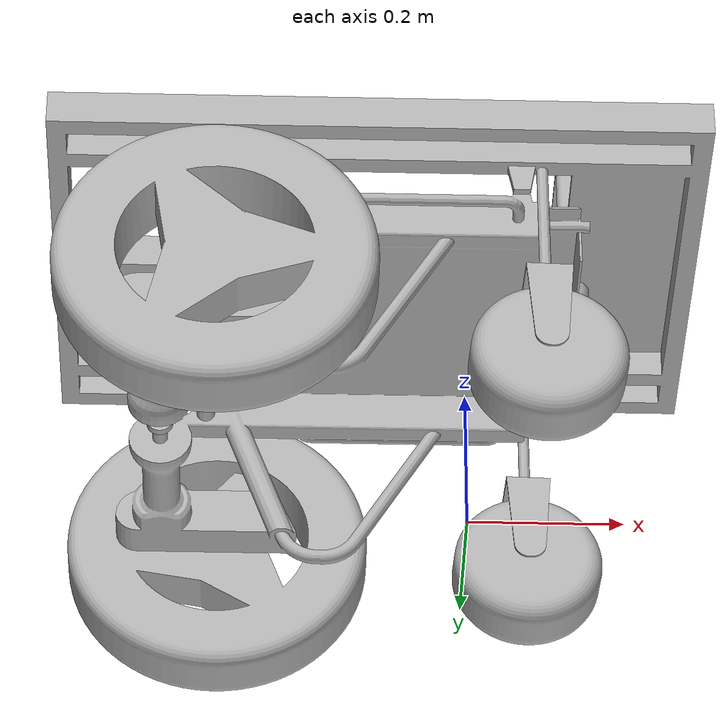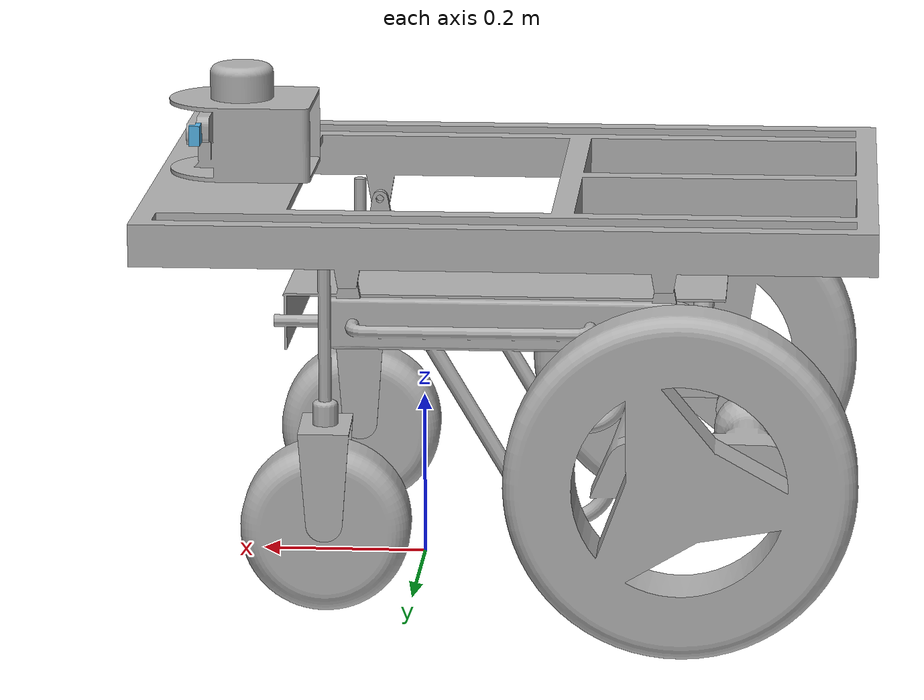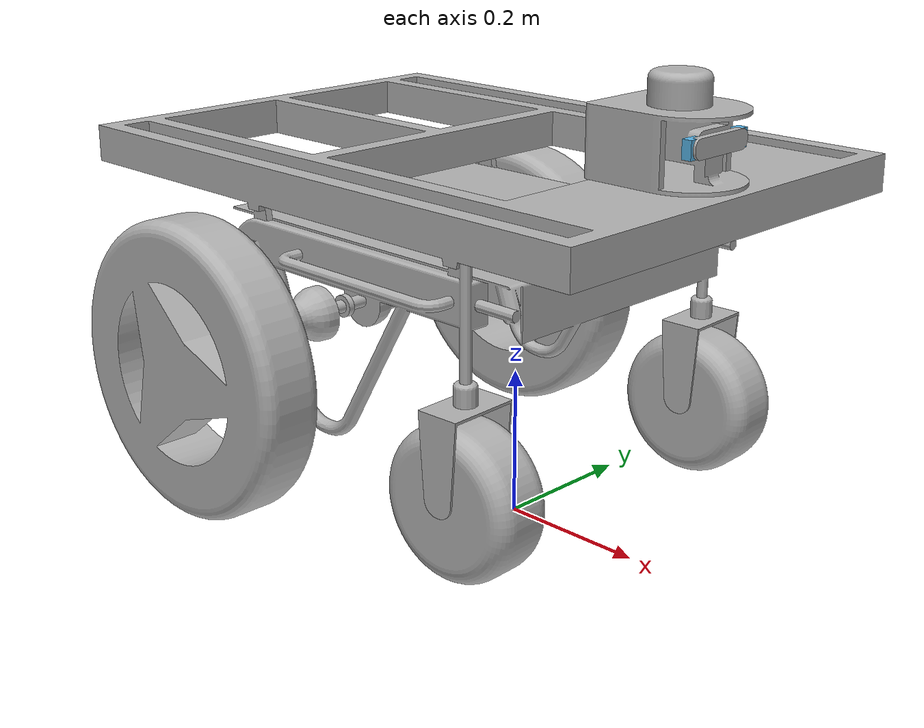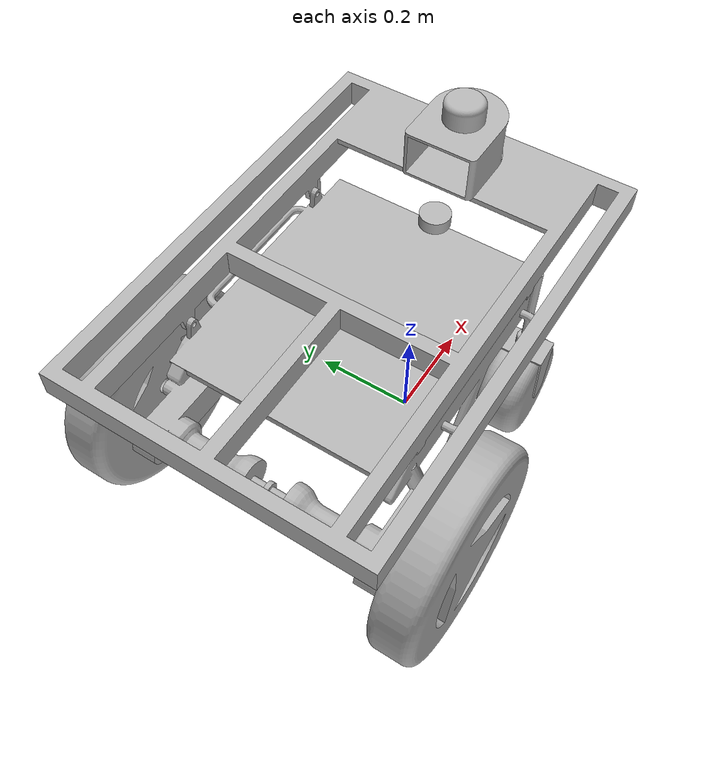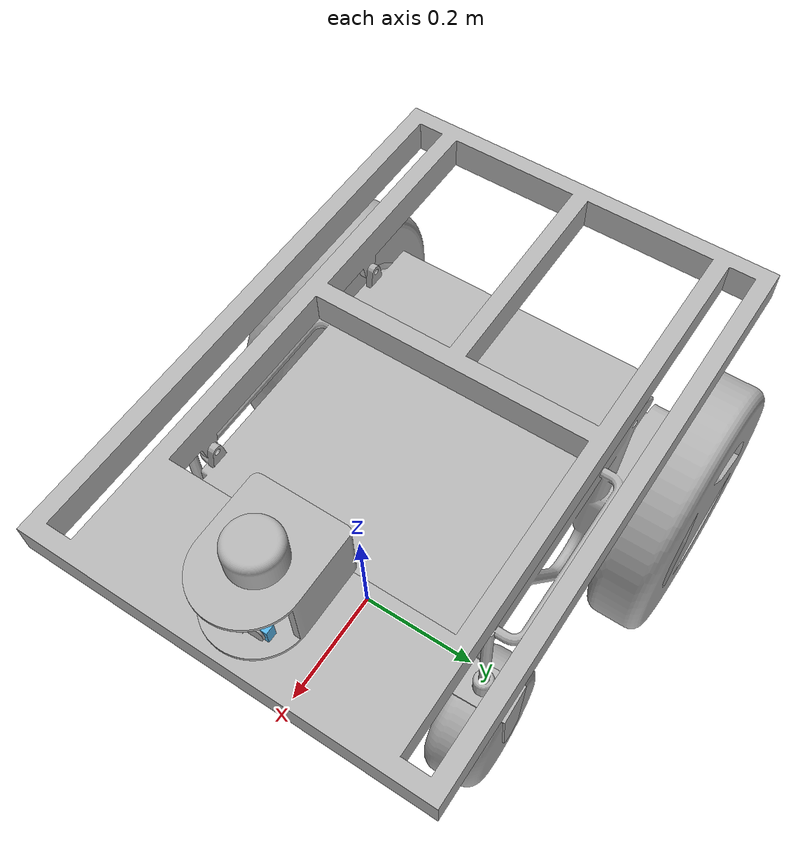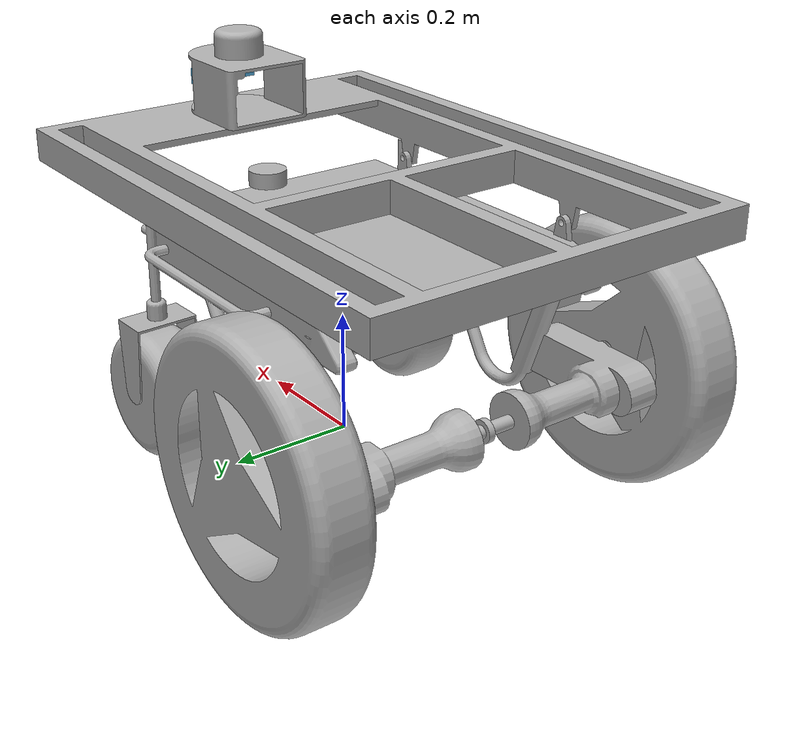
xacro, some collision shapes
<?xml version="1.0" ?>
<robot name="mobile_mover" xmlns:xacro="http://www.ros.org/wiki/xacro">

<xacro:include filename="$(find steer_wheel_bot_description)/urdf/materials2.xacro" />
<xacro:include filename="$(find steer_wheel_bot_description)/urdf/mobile_mover.trans" />
<xacro:include filename="$(find steer_wheel_bot_description)/urdf/mobile_mover.gazebo" />
<link name="base_link">
  <inertial>
    <origin rpy="0 0 0" xyz="-0.23317561352724503 0.04188257119561364 0.2703989236073173"/>
    <mass value="44.51856364368825"/>
    <inertia ixx="2.079258" ixy="-0.0" ixz="-0.435412" iyy="1.555503" iyz="-0.0" izz="2.957514"/>
  </inertial>
  <visual>
    <origin rpy="0 0 0" xyz="0 0 0"/>
    <geometry>
      <mesh filename="package://steer_wheel_bot_description/meshes/mobile_mover/base_link.stl" scale="0.001 0.001 0.001"/>
    </geometry>
    <material name="silver"/>
  </visual>
  <collision>
    <origin rpy="0 0 0" xyz="0 0 0"/>
    <geometry>
      <mesh filename="package://steer_wheel_bot_description/meshes/mobile_mover/base_link.stl" scale="0.001 0.001 0.001"/>
    </geometry>
  </collision>
</link>

<link name="front_right_steer_1">
  <inertial>
    <origin rpy="0 0 0" xyz="-6.0441180627368585e-06 -4.299779410021909e-07 -0.047823587226302866"/>
    <mass value="0.5241167973513366"/>
    <inertia ixx="0.001969" ixy="-0.0" ixz="-0.0" iyy="0.001214" iyz="0.0" izz="0.000984"/>
  </inertial>
  <visual>
    <origin rpy="0 0 0" xyz="-0.095315 0.189117 -0.233564"/>
    <geometry>
      <mesh filename="package://steer_wheel_bot_description/meshes/mobile_mover/front_right_steer_1.stl" scale="0.001 0.001 0.001"/>
    </geometry>
    <material name="silver"/>
  </visual>
  <collision>
    <origin rpy="0 0 0" xyz="-0.095315 0.189117 -0.233564"/>
    <geometry>
      <mesh filename="package://steer_wheel_bot_description/meshes/mobile_mover/front_right_steer_1.stl" scale="0.001 0.001 0.001"/>
    </geometry>
  </collision>
</link>

<link name="front_left_steer_1">
  <inertial>
    <origin rpy="0 0 0" xyz="-6.044478136416065e-06 -4.298018361215128e-07 -0.04782358688912092"/>
    <mass value="0.5241167977909424"/>
    <inertia ixx="0.001969" ixy="-0.0" ixz="-0.0" iyy="0.001214" iyz="0.0" izz="0.000984"/>
  </inertial>
  <visual>
    <origin rpy="0 0 0" xyz="-0.095315 -0.272883 -0.233564"/>
    <geometry>
      <mesh filename="package://steer_wheel_bot_description/meshes/mobile_mover/front_left_steer_1.stl" scale="0.001 0.001 0.001"/>
    </geometry>
    <material name="silver"/>
  </visual>
  <collision>
    <origin rpy="0 0 0" xyz="-0.095315 -0.272883 -0.233564"/>
    <geometry>
      <mesh filename="package://steer_wheel_bot_description/meshes/mobile_mover/front_left_steer_1.stl" scale="0.001 0.001 0.001"/>
    </geometry>
  </collision>
</link>

<link name="frame_1">
  <inertial>
    <origin rpy="0 0 0" xyz="-0.17524070367050704 -0.22039804841856286 0.046187697173592"/>
    <mass value="56.88074843558096"/>
    <inertia ixx="2.699692" ixy="0.0" ixz="-0.032419" iyy="4.683623" iyz="0.0" izz="7.35659"/>
  </inertial>
  <visual>
    <origin rpy="0 0 0" xyz="-0.06888 -0.261883 -0.416956"/>
    <geometry>
      <mesh filename="package://steer_wheel_bot_description/meshes/mobile_mover/frame_1.stl" scale="0.001 0.001 0.001"/>
    </geometry>
    <material name="silver"/>
  </visual>
  <collision>
    <origin rpy="0 0 0" xyz="-0.06888 -0.261883 -0.416956"/>
    <geometry>
      <mesh filename="package://steer_wheel_bot_description/meshes/mobile_mover/frame_1.stl" scale="0.001 0.001 0.001"/>
    </geometry>
  </collision>
</link>

<link name="holder_1">
  <inertial>
    <origin rpy="0 0 0" xyz="-0.010271011177415967 4.5429540449171135e-05 0.04467777362627379"/>
    <mass value="3.539553306950206"/>
    <inertia ixx="0.012719" ixy="-9e-06" ixz="5.8e-05" iyy="0.011103" iyz="0.0" izz="0.015721"/>
  </inertial>
  <visual>
    <origin rpy="0 0 0" xyz="-0.215468 -0.041485 -0.486652"/>
    <geometry>
      <mesh filename="package://steer_wheel_bot_description/meshes/mobile_mover/holder_1.stl" scale="0.001 0.001 0.001"/>
    </geometry>
    <material name="silver"/>
  </visual>
  <collision>
    <origin rpy="0 0 0" xyz="-0.215468 -0.041485 -0.486652"/>
    <geometry>
      <mesh filename="package://steer_wheel_bot_description/meshes/mobile_mover/holder_1.stl" scale="0.001 0.001 0.001"/>
    </geometry>
  </collision>
</link>

<link name="rplidar_1">
  <inertial>
    <origin rpy="0 0 0" xyz="2.4956952590637904e-07 -4.622064599113518e-08 0.020015469663036356"/>
    <mass value="1.422201622524844"/>
    <inertia ixx="0.000694" ixy="-0.0" ixz="0.0" iyy="0.000694" iyz="-0.0" izz="0.001005"/>
  </inertial>
  <visual>
    <origin rpy="0 0 0" xyz="-0.215468 -0.041485 -0.576652"/>
    <geometry>
      <mesh filename="package://steer_wheel_bot_description/meshes/mobile_mover/rplidar_1.stl" scale="0.001 0.001 0.001"/>
    </geometry>
    <material name="silver"/>
  </visual>
  <collision>
    <origin rpy="0 0 0" xyz="-0.215468 -0.041485 -0.576652"/>
    <geometry>
      <mesh filename="package://steer_wheel_bot_description/meshes/mobile_mover/rplidar_1.stl" scale="0.001 0.001 0.001"/>
    </geometry>
  </collision>
</link>

<link name="t265_1">
  <inertial>
    <origin rpy="0 0 0" xyz="0.004999890006068153 -3.6964643630038596e-07 1.6632066934807455e-07"/>
    <mass value="0.18951150233067984"/>
    <inertia ixx="0.000158" ixy="0.0" ixz="-0.0" iyy="1.1e-05" iyz="0.0" izz="0.00015"/>
  </inertial>
  <visual>
    <origin rpy="0 0 0" xyz="-0.267613 -0.04192 -0.539152"/>
    <geometry>
      <mesh filename="package://steer_wheel_bot_description/meshes/mobile_mover/t265_1.stl" scale="0.001 0.001 0.001"/>
    </geometry>
    <material name="silver"/>
  </visual>
  <collision>
    <origin rpy="0 0 0" xyz="-0.267613 -0.04192 -0.539152"/>
    <geometry>
      <mesh filename="package://steer_wheel_bot_description/meshes/mobile_mover/t265_1.stl" scale="0.001 0.001 0.001"/>
    </geometry>
  </collision>
</link>

<link name="front_steer_1">
  <inertial>
    <origin rpy="0 0 0" xyz="-3.6325265601044876e-08 -4.298912406122679e-07 0.012499701139937702"/>
    <mass value="0"/>
    <inertia ixx="0.000154" ixy="-0.0" ixz="0.0" iyy="0.000154" iyz="0.0" izz="0.00025"/>
  </inertial>
  <visual>
    <origin rpy="0 0 0" xyz="-0.142076 -0.041883 -0.385564"/>
    <geometry>
      <mesh filename="package://steer_wheel_bot_description/meshes/mobile_mover/front_steer_1.stl" scale="0.001 0.001 0.001"/>
    </geometry>
    <material name="silver"/>
  </visual>
  <collision>
    <origin rpy="0 0 0" xyz="-0.142076 -0.041883 -0.385564"/>
    <geometry>
      <mesh filename="package://steer_wheel_bot_description/meshes/mobile_mover/front_steer_1.stl" scale="0.001 0.001 0.001"/>
    </geometry>
  </collision>
</link>
<link name="front_right_wheel_1">
  <inertial>
     <origin rpy="0 0 0" xyz="-0.0017259358567945776 0.04496637308849069 8.831674661036182e-08"/>
    <mass value="3.890647375550827"/>
    <inertia ixx="0.062923" ixy="-0.001414" ixz="-0.0" iyy="0.099705" iyz="0.0" izz="0.062869"/>
  </inertial>
  <visual>
    <origin rpy="0 0 0" xyz="-0.096984 0.234086 -0.112327"/>
    <geometry>
      <mesh filename="package://steer_wheel_bot_description/meshes/mobile_mover/front_right_wheel_1.stl" scale="0.001 0.001 0.001"/>
    </geometry>
    <material name="silver"/>
  </visual>
  <collision>
     <origin rpy="0 0 0" xyz="-0.096984 0.234086 -0.112327"/>
    <geometry>
      <mesh filename="package://steer_wheel_bot_description/meshes/mobile_mover/front_right_wheel_1.stl" scale="0.001 0.001 0.001"/>
    </geometry>
  </collision>
</link>
<link name="front_left_wheel_1">
  <inertial>
    <origin rpy="0 0 0" xyz="-0.00172593584430214 0.04496637326778047 8.831671204079239e-08"/>
    <mass value="3.890647375550806"/>
    <inertia ixx="0.062923" ixy="-0.001414" ixz="0.0" iyy="0.099705" iyz="0.0" izz="0.062869"/>
  </inertial>
  <visual>
    <origin rpy="0 0 0" xyz="-0.096984 -0.227914 -0.112327"/>
    <geometry>
      <mesh filename="package://steer_wheel_bot_description/meshes/mobile_mover/front_left_wheel_1.stl" scale="0.001 0.001 0.001"/>
    </geometry>
    <material name="silver"/>
  </visual>
  <collision>
  <origin rpy="0 0 0" xyz="-0.096984 -0.227914 -0.112327"/>
    <geometry>
      <mesh filename="package://steer_wheel_bot_description/meshes/mobile_mover/front_left_wheel_1.stl" scale="0.001 0.001 0.001"/>
    </geometry>
  </collision>
</link>

<link name="Component221_1">
  <inertial>
    <origin rpy="0 0 0" xyz="1.3089888273309924e-07 0.03999957010876765 -6.694811874319306e-08"/>
    <mass value="0.1972920186454391"/>
    <inertia ixx="0.00011" ixy="-0.0" ixz="0.0" iyy="1e-05" iyz="-0.0" izz="0.00011"/>
  </inertial>
  <visual>
    <origin rpy="0 0 0" xyz="0.398806 -0.001883 -0.186215"/>
    <geometry>
      <mesh filename="package://steer_wheel_bot_description/meshes/mobile_mover/Component221_1.stl" scale="0.001 0.001 0.001"/>
    </geometry>
    <material name="silver"/>
  </visual>
  <collision>
    <origin rpy="0 0 0" xyz="0.398806 -0.001883 -0.186215"/>
    <geometry>
      <mesh filename="package://steer_wheel_bot_description/meshes/mobile_mover/Component221_1.stl" scale="0.001 0.001 0.001"/>
    </geometry>
  </collision>
</link>

<link name="rear_wheel_1">
  <inertial>
    <origin rpy="0 0 0" xyz="1.3089887962447477e-07 0.0049995701087678646 -6.694811729990313e-08"/>
    <mass value="0"/>
    <inertia ixx="5e-06" ixy="0.0" ixz="0.0" iyy="1e-05" iyz="0.0" izz="5e-06"/>
  </inertial>
  <visual>
    <origin rpy="0 0 0" xyz="0.398806 -0.041883 -0.186215"/>
    <geometry>
      <mesh filename="package://steer_wheel_bot_description/meshes/mobile_mover/rear_wheel_1.stl" scale="0.001 0.001 0.001"/>
    </geometry>
    <material name="silver"/>
  </visual>
  <collision>
    <origin rpy="0 0 0" xyz="0.398806 -0.041883 -0.186215"/>
    <geometry>
      <mesh filename="package://steer_wheel_bot_description/meshes/mobile_mover/rear_wheel_1.stl" scale="0.001 0.001 0.001"/>
    </geometry>
  </collision>
</link>

<link name="rear_left_wheel_1">
  <inertial>
    <origin rpy="0 0 0" xyz="-3.5702725187380935e-07 0.022393609573460982 6.257626461447785e-08"/>
    <mass value="5.08809133279846"/>
    <inertia ixx="0.888586" ixy="0.0" ixz="-1e-06" iyy="1.690944" iyz="0.0" izz="0.888588"/>
  </inertial>
  <visual>
    <origin rpy="0 0 0" xyz="0.324712 -0.336883 -0.192691"/>
    <geometry>
      <mesh filename="package://steer_wheel_bot_description/meshes/mobile_mover/rear_left_wheel_1.stl" scale="0.001 0.001 0.001"/>
    </geometry>
    <material name="silver"/>
  </visual>
  <collision>
    <origin rpy="0 0 0" xyz="0.324712 -0.336883 -0.192691"/>
    <geometry>
      <mesh filename="package://steer_wheel_bot_description/meshes/mobile_mover/rear_left_wheel_1.stl" scale="0.001 0.001 0.001"/>
    </geometry>
  </collision>
</link>

<link name="rear_right_wheel_1">
  <inertial>
    <origin rpy="0 0 0" xyz="1.5516554191519205e-07 -0.02239446935592715 -3.4935295906146635e-07"/>
    <mass value="5.08809133279846"/>
    <inertia ixx="0.888589" ixy="-0.0" ixz="-0.0" iyy="1.690944" iyz="-0.0" izz="0.888586"/>
  </inertial>
  <visual>
    <origin rpy="0 0 0" xyz="0.324712 0.253117 -0.192691"/>
    <geometry>
      <mesh filename="package://steer_wheel_bot_description/meshes/mobile_mover/rear_right_wheel_1.stl" scale="0.001 0.001 0.001"/>
    </geometry>
    <material name="silver"/>
  </visual>
  <collision>
    <origin rpy="0 0 0" xyz="0.324712 0.253117 -0.192691"/>
    <geometry>
      <mesh filename="package://steer_wheel_bot_description/meshes/mobile_mover/rear_right_wheel_1.stl" scale="0.001 0.001 0.001"/>
    </geometry>
  </collision>
</link>

<joint name="front_right_steer_joint" type="revolute">
  <origin rpy="0 0 0" xyz="0.095315 -0.189117 0.233564"/>
  <parent link="base_link"/>
  <child link="front_right_steer_1"/>
  <axis xyz="0.0 0.0 1.0"/>
  <limit effort="100" lower="-0.923599" upper="0.923599" velocity="100"/>
</joint>

<joint name="front_left_steer_joint" type="revolute">
  <origin rpy="0 0 0" xyz="0.095315 0.272883 0.233564"/>
  <parent link="base_link"/>
  <child link="front_left_steer_1"/>
  <axis xyz="0.0 0.0 1.0"/>
  <limit effort="100" lower="-0.923599" upper="0.923599" velocity="100"/>
</joint>

<joint name="base_frame" type="fixed">
  <origin rpy="0 0 0" xyz="0.06888 0.261883 0.416956"/>
  <parent link="base_link"/>
  <child link="frame_1"/>
</joint>

<joint name="frame_holder" type="fixed">
  <origin rpy="0 0 0" xyz="0.146588 -0.220398 0.069696"/>
  <parent link="frame_1"/>
  <child link="holder_1"/>
</joint>

<joint name="holder_lidar" type="fixed">
  <origin rpy="0 0 0" xyz="0.0 0.0 0.09"/>
  <parent link="holder_1"/>
  <child link="rplidar_1"/>
</joint>

<joint name="holder_camera" type="fixed">
  <origin rpy="0 0 0" xyz="0.052145 0.000435 0.0525"/>
  <parent link="holder_1"/>
  <child link="t265_1"/>
</joint>

<joint name="front_steer_joint" type="continuous">
  <origin rpy="0 0 0" xyz="0.142076 0.041883 0.385564"/>
  <parent link="base_link"/>
  <child link="front_steer_1"/>
  <axis xyz="0.0 0.0 1.0"/>
</joint>

<joint name="front_right_wheel_joint" type="continuous">
 <origin rpy="0 0 0" xyz="0.001669 -0.044969 -0.121237"/>
  <parent link="front_right_steer_1"/>
  <child link="front_right_wheel_1"/>
   <axis xyz="0.0 1.0 0.0"/>
</joint>

<joint name="front_left_wheel_joint" type="continuous">
   <origin rpy="0 0 0" xyz="0.001669 -0.044969 -0.121237"/>
  <parent link="front_left_steer_1"/>
  <child link="front_left_wheel_1"/>
   <axis xyz="0.0 1.0 0.0"/>
</joint>

<joint name="Rigid66" type="fixed">
  <origin rpy="0 0 0" xyz="-0.398806 0.001883 0.186215"/>
  <parent link="base_link"/>
  <child link="Component221_1"/>
</joint>

<joint name="rear_wheel_joint" type="continuous">
  <origin rpy="0 0 0" xyz="0.0 0.04 0.0"/>
  <parent link="Component221_1"/>
  <child link="rear_wheel_1"/>
  <axis xyz="0.0 1.0 0.0"/>
</joint>

<joint name="rear_left_wheel_joint" type="continuous">
  <origin rpy="0 0 0" xyz="-0.324712 0.336883 0.192691"/>
  <parent link="base_link"/>
  <child link="rear_left_wheel_1"/>
  <axis xyz="0.0 1.0 0.0"/>
</joint>

<joint name="rear_right_wheel_joint" type="continuous">
  <origin rpy="0 0 0" xyz="-0.324712 -0.253117 0.192691"/>
  <parent link="base_link"/>
  <child link="rear_right_wheel_1"/>
  <axis xyz="0.0 1.0 0.0"/>
</joint>

</robot>

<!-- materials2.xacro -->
<robot name="mobile_mover" xmlns:xacro="http://www.ros.org/wiki/xacro" >

<material name="silver">
  <color rgba="0.700 0.700 0.700 1.000"/>
</material>

</robot>

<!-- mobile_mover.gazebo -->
<robot name="mobile_mover" xmlns:xacro="http://www.ros.org/wiki/xacro" >

<xacro:property name="body_color" value="Gazebo/Silver" />

<gazebo>
  <plugin filename="libgazebo_ros_control.so" name="control"/>
</gazebo>
  <xacro:property name="robot_namespace" value="/mobile_mover"/>

  <!-- Gazebo plugins -->
  <gazebo>
    <!-- Load ros_control plugin using the steer_bot_hardware_gazebo
    implementation of the hardware_interface::RobotHW -->
    <plugin name="gazebo_ros_control" filename="libgazebo_ros_control.so">
      <robotNamespace>${robot_namespace}</robotNamespace>
      <robotSimType>steer_bot_hardware_gazebo/SteerBotHardwareGazebo</robotSimType>
      <legacyModeNS>false</legacyModeNS>
    </plugin>
  </gazebo>
    <gazebo reference="rplidar_1">
    <sensor type="ray" name="head_hokuyo_sensor">
      <pose>0 0 0 0 0 0</pose>
      <visualize>false</visualize>
      <update_rate>40</update_rate>
      <ray>
        <scan>
          <horizontal>
            <samples>720</samples>
            <resolution>1</resolution>
            <min_angle>-2.0</min_angle>
            <max_angle>2.0</max_angle>
          </horizontal>
        </scan>
        <range>
          <min>0.10</min>
          <max>25.0</max>
          <resolution>0.01</resolution>
        </range>
        <noise>
          <type>gaussian</type>
          <mean>0.0</mean>
          <stddev>0.01</stddev>
        </noise>
      </ray>
      <plugin name="gazebo_ros_head_hokuyo_controller" filename="libgazebo_ros_laser.so">
        <topicName>/scan</topicName>
        <frameName>rplidar_1</frameName>
      </plugin>
    </sensor>
  </gazebo>

  <xacro:include filename="$(find realsense_ros_gazebo)/xacro/tracker.xacro"/>

<xacro:realsense_T265 sensor_name="camera" parent_link="t265_1" rate="30.0">
  <origin rpy="0 0 0" xyz="0 0 0"/>
</xacro:realsense_T265>
<gazebo reference="base_link">
  <material>${body_color}</material>
  <mu1>0.2</mu1>
  <mu2>0.2</mu2>
  <selfCollide>true</selfCollide>
  <gravity>true</gravity>
</gazebo>

<gazebo reference="front_right_steer_1">
  <material>${body_color}</material>
  <mu1>0.2</mu1>
  <mu2>0.2</mu2>
  <selfCollide>true</selfCollide>
</gazebo>

<gazebo reference="front_left_steer_1">
  <material>${body_color}</material>
  <mu1>0.2</mu1>
  <mu2>0.2</mu2>
  <selfCollide>true</selfCollide>
</gazebo>

<gazebo reference="frame_1">
  <material>${body_color}</material>
  <mu1>0.2</mu1>
  <mu2>0.2</mu2>
  <selfCollide>true</selfCollide>
</gazebo>

<gazebo reference="holder_1">
  <material>${body_color}</material>
  <mu1>0.2</mu1>
  <mu2>0.2</mu2>
  <selfCollide>true</selfCollide>
</gazebo>

<gazebo reference="rplidar_1">
  <material>${body_color}</material>
  <mu1>0.2</mu1>
  <mu2>0.2</mu2>
  <selfCollide>true</selfCollide>
</gazebo>

<gazebo reference="t265_1">
  <material>${body_color}</material>
  <mu1>0.2</mu1>
  <mu2>0.2</mu2>
  <selfCollide>true</selfCollide>
</gazebo>

<gazebo reference="front_steer_1">
  <material>${body_color}</material>
  <mu1>0.2</mu1>
  <mu2>0.2</mu2>
  <selfCollide>true</selfCollide>
</gazebo>

<gazebo reference="front_right_wheel_1">
  <material>${body_color}</material>
  <mu1>100000</mu1>
  <mu2>100000</mu2>
  <selfCollide>true</selfCollide>
</gazebo>

<gazebo reference="front_left_wheel_1">
  <material>${body_color}</material>
  <mu1>100000</mu1>
  <mu2>100000</mu2>
  <selfCollide>true</selfCollide>
</gazebo>

<gazebo reference="Component221_1">
  <material>${body_color}</material>
  <mu1>0.2</mu1>
  <mu2>0.2</mu2>
  <selfCollide>true</selfCollide>
</gazebo>

<gazebo reference="rear_wheel_1">
  <material>${body_color}</material>
  <mu1>0.1</mu1>
  <mu2>0.1</mu2>
  <selfCollide>true</selfCollide>
</gazebo>

<gazebo reference="rear_left_wheel_1">
  <material>${body_color}</material>
  <mu1>100000</mu1>
  <mu2>100000</mu2>
  <selfCollide>true</selfCollide>
</gazebo>

<gazebo reference="rear_right_wheel_1">
  <material>${body_color}</material>
  <mu1>100000</mu1>
  <mu2>100000</mu2>
  <selfCollide>true</selfCollide>
</gazebo>

</robot>

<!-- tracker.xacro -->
<robot xmlns:xacro="http://www.ros.org/wiki/xacro">

  <xacro:macro name="T265_fisheye" params="sensor_name reference_frame topic rate">
    <gazebo reference="${reference_frame}">
      <sensor name="camera" type="wideanglecamera">
        <camera>
          <horizontal_fov>6.283</horizontal_fov>
          <image>
            <width>320</width>
            <height>240</height>
          </image>
          <clip>
            <near>0.1</near>
            <far>100</far>
          </clip>
          <lens>
            <type>custom</type>
            <custom_function>
              <c1>1.05</c1>
              <c2>4</c2>
              <f>1.0</f>
              <fun>tan</fun>
            </custom_function>
            <scale_to_hfov>true</scale_to_hfov>
            <cutoff_angle>6.283</cutoff_angle>
            <env_texture_size>512</env_texture_size>
          </lens>
          <always_on>true</always_on>
          <update_rate>30</update_rate>
        </camera>
        <plugin name="camera_controller" filename="libgazebo_ros_camera.so">
          <cameraName>${sensor_name}/${topic}</cameraName>
          <imageTopicName>image_raw</imageTopicName>
          <cameraInfoTopicName>camera_info</cameraInfoTopicName>
          <frameName>${reference_frame}</frameName>
          <hackBaseline>0.07</hackBaseline>
          <distortionK1>-0.007419134024530649</distortionK1>
          <distortionK2>0.041209351271390915</distortionK2>
          <distortionK3>-0.03811917081475258</distortionK3>
          <distortionT1>0.006366158835589886</distortionT1>
          <distortionT2>0.0</distortionT2>
          <CxPrime>416.00531005859375</CxPrime>
          <Cx>16.00531005859375</Cx>
          <Cy>403.38909912109375</Cy>
        </plugin>
      </sensor>
    </gazebo>
  </xacro:macro>

  <!-- INTEL REALSENSE T265 -->

  <xacro:macro name="realsense_T265" params="sensor_name parent_link rate *origin">

    <joint name="${sensor_name}_odom_frame_joint" type="fixed">
        <parent link="${parent_link}"/>
        <child link="${sensor_name}_odom_frame"/>
        <xacro:insert_block name="origin"/>
    </joint>

    <joint name="${sensor_name}_pose_frame_joint" type="fixed">
        <parent link="${sensor_name}_odom_frame"/>
        <child link="${sensor_name}_pose_frame"/>
        <origin rpy="0 0 0" xyz="0 0 0"/> <!-- check on real hw -->
    </joint>
    <link name="${sensor_name}_odom_frame" />

    <link name="${sensor_name}_pose_frame">
        <visual>
            <origin rpy="1.57 0 1.57" xyz="0 0 -0.478"/>
            <geometry>
                <mesh filename="package://realsense_ros_gazebo/meshes/realsense_t265.stl" scale="0.001 0.001 0.001"/>
            </geometry>
        </visual>
        <collision>
            <geometry>
                <box size="0.013 0.108 0.024"/>
            </geometry>
        </collision>
        <inertial>
            <mass value="0.055"/>
            <origin rpy="0 0 0" xyz="0 0 0"/>
            <inertia ixx="9.108e-05"
                     ixy="0"
                     ixz="0"
                     iyy="2.51e-06"
                     iyz="0"
                     izz="8.931e-05"/>
        </inertial>
    </link>

    <joint name="${sensor_name}_joint" type="fixed">
        <parent link="${sensor_name}_pose_frame"/>
        <child link="${sensor_name}_link"/>
        <origin rpy="0 0 0" xyz="0 0 0"/> <!-- check on real hw -->
    </joint>
    <link name="${sensor_name}_link"/>

    <joint name="${sensor_name}_fisheye1_joint" type="fixed">
        <parent link="${sensor_name}_link"/>
        <child link="${sensor_name}_fisheye1_frame"/>
        <origin rpy="0 0 0" xyz="0 0.042 0"/>
    </joint>
    <link name="${sensor_name}_fisheye1_frame"/>

    <joint name="${sensor_name}_fisheye1_optical_joint" type="fixed">
        <parent link="${sensor_name}_fisheye1_frame"/>
        <child link="${sensor_name}_fisheye1_optical_frame"/>
        <origin rpy="0 0 0" xyz="0.01 0 0"/>
    </joint>
    <link name="${sensor_name}_fisheye1_optical_frame"/>
    <xacro:T265_fisheye
      sensor_name="${sensor_name}"
      reference_frame="${sensor_name}_fisheye1_optical_frame"
      topic="fisheye1"
      rate="${rate}">
    </xacro:T265_fisheye>

    <joint name="${sensor_name}_fisheye2_joint" type="fixed">
        <parent link="${sensor_name}_link"/>
        <child link="${sensor_name}_fisheye2_frame"/>
        <origin rpy="0 0 0" xyz="0 -0.022 0"/>
    </joint>
    <link name="${sensor_name}_fisheye2_frame"/>

    <joint name="${sensor_name}_fisheye2_optical_joint" type="fixed">
        <parent link="${sensor_name}_fisheye2_frame"/>
        <child link="${sensor_name}_fisheye2_optical_frame"/>
        <origin rpy="0 0 0" xyz="0.01 0 0"/>
    </joint>
    <link name="${sensor_name}_fisheye2_optical_frame"/>
    <xacro:T265_fisheye
      sensor_name="${sensor_name}"
      reference_frame="${sensor_name}_fisheye2_optical_frame"
      topic="fisheye2"
      rate="${rate}">
    </xacro:T265_fisheye>

    <joint name="${sensor_name}_gyro_joint" type="fixed">
        <parent link="${sensor_name}_link"/>
        <child link="${sensor_name}_gyro_frame"/>
        <origin rpy="0 0 0" xyz="0 0 0"/> <!-- check on real hw -->
    </joint>
    <link name="${sensor_name}_gyro_frame"/>

    <gazebo reference="${sensor_name}_gyro_frame">
        <gravity>true</gravity>
        <sensor name="${sensor_name}_imu" type="imu">
            <always_on>true</always_on>
            <update_rate>${rate}</update_rate>
            <visualize>false</visualize>
            <plugin filename="libgazebo_ros_imu_sensor.so" name="imu_plugin">
                <topicName>${sensor_name}/gyro/sample</topicName>
                <bodyName>${sensor_name}_pose_frame</bodyName>
                <updateRateHZ>${rate}</updateRateHZ>
                <gaussianNoise>0.000001</gaussianNoise>
                <xyzOffset>0 0 0</xyzOffset>
                <rpyOffset>0 0 0</rpyOffset>
                <frameName>${sensor_name}_link</frameName>
            </plugin>
        </sensor>
    </gazebo>

    <joint name="${sensor_name}_accel_joint" type="fixed">
        <parent link="${sensor_name}_link"/>
        <child link="${sensor_name}_accel_frame"/>
        <origin rpy="0 0 0" xyz="0 0 0"/> <!-- check on real hw -->
    </joint>
    <link name="${sensor_name}_accel_frame"/> <!-- dummy -->

    <gazebo> <!-- odometry -->
        <plugin name="p3d_base_controller" filename="libgazebo_ros_p3d.so">
            <alwaysOn>true</alwaysOn>
            <updateRate>${rate}</updateRate>
            <bodyName>${sensor_name}_odom_frame</bodyName>
            <topicName>${sensor_name}/odom/sample</topicName>
            <gaussianNoise>0.001</gaussianNoise>
            <frameName>map</frameName>
            <xyzOffsets>0 0 0</xyzOffsets>
            <rpyOffsets>0 0 0</rpyOffsets>
        </plugin>
    </gazebo>

  </xacro:macro>

</robot>
